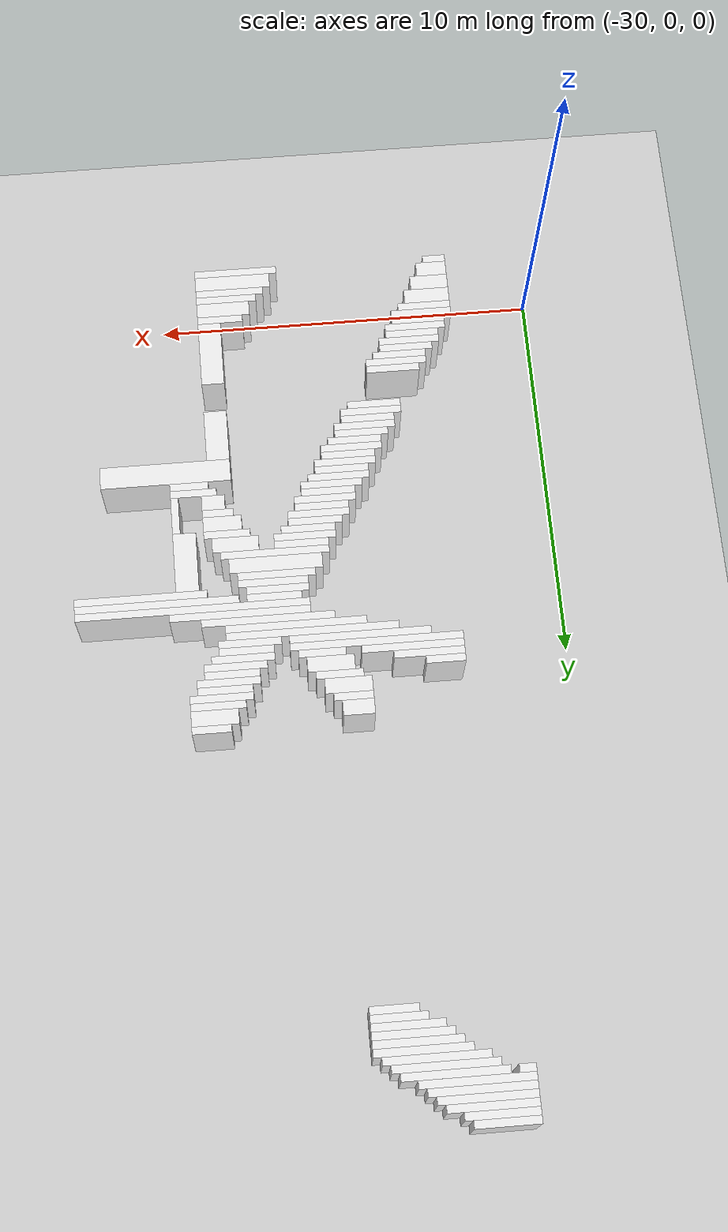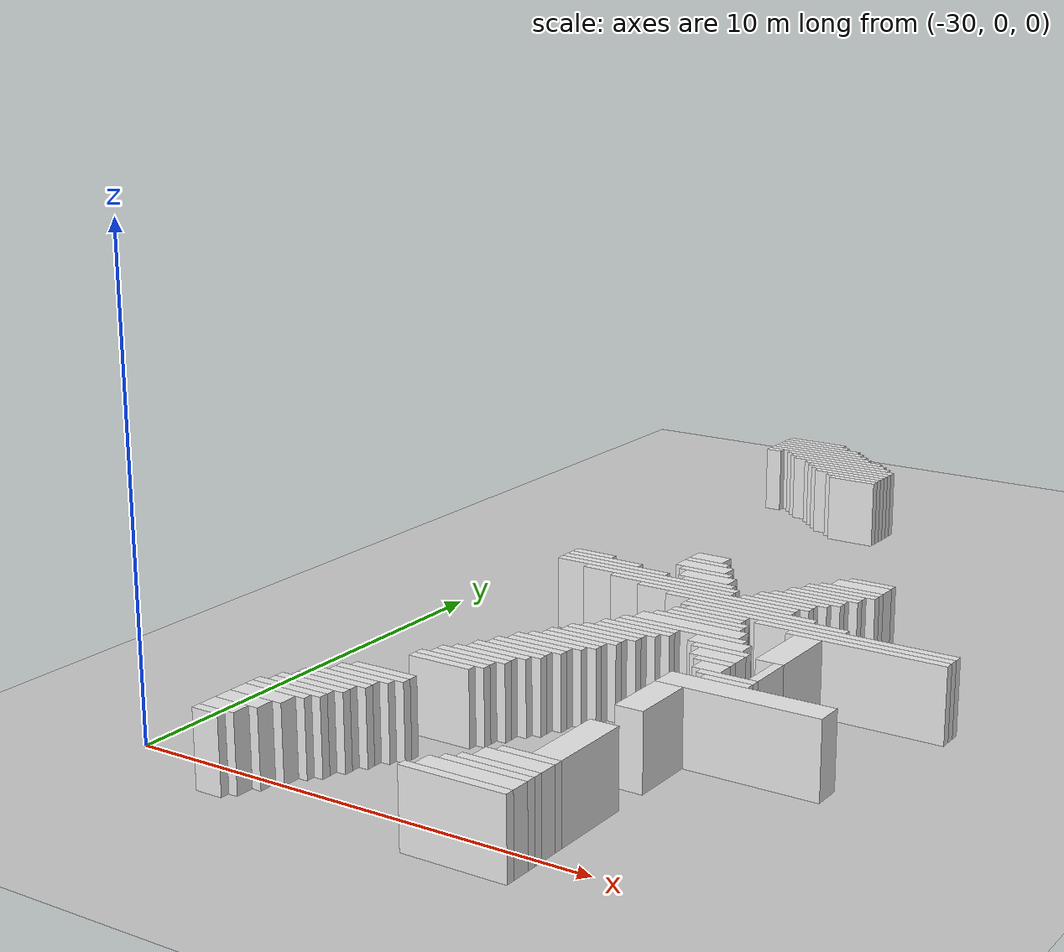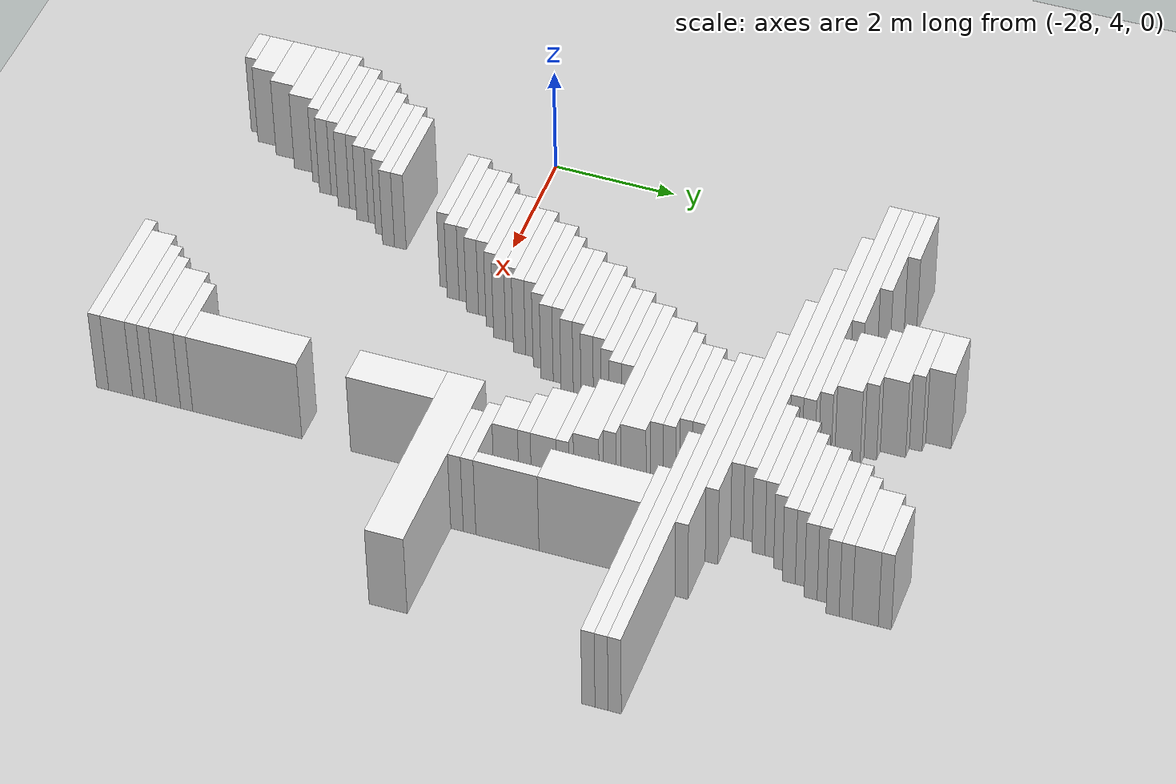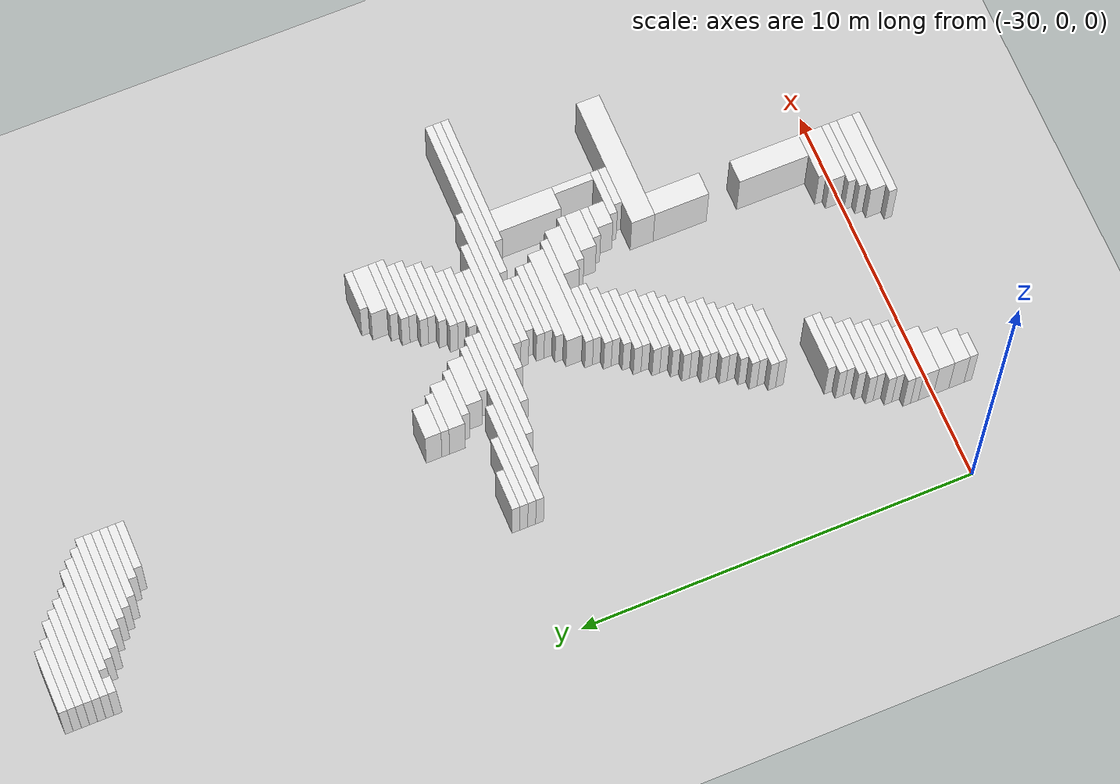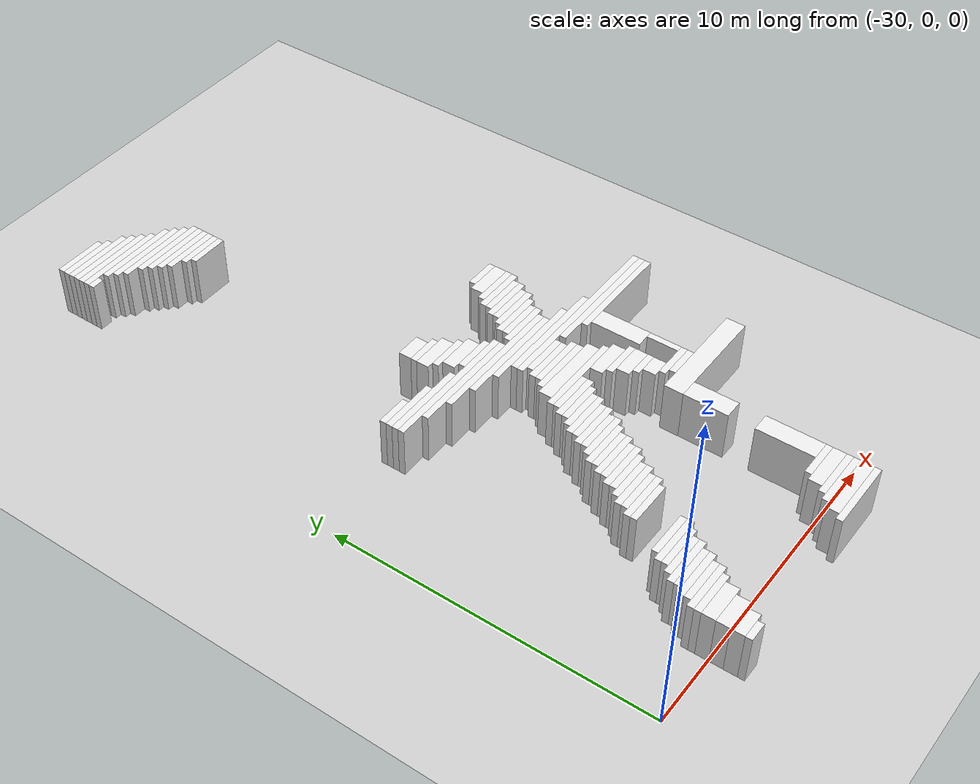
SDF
<sdf version="1.7">
 <world name="default">
  <model name="ground_plane">
   <static>1</static>
   <link name="link">
    <collision name="collision">
     <geometry><plane><normal>0 0 1</normal><size>120 120</size></plane></geometry>
    </collision>
    <visual name="visual">
     <geometry><plane><normal>0 0 1</normal><size>120 120</size></plane></geometry>
     <material>
      <script><uri>file://media/materials/scripts/gazebo.material</uri><name>Gazebo/Grey</name></script>
     </material>
    </visual>
   </link>
  </model>
  <model name="random_complex_03_model">
   <static>1</static>
   <link name="obs_855">
    <pose>-27.0000 21.9000 0.8000 0 0 0</pose>
    <collision name="obs_855_col"><geometry><box><size>1.6000 0.2000 1.6000</size></box></geometry></collision>
    <visual name="obs_855_vis">
     <geometry><box><size>1.6000 0.2000 1.6000</size></box></geometry>
     <material>
      <script><uri>file://media/materials/scripts/gazebo.material</uri><name>Gazebo/White</name></script>
     </material>
    </visual>
   </link>
   <link name="obs_864">
    <pose>-26.9000 21.7000 0.8000 0 0 0</pose>
    <collision name="obs_864_col"><geometry><box><size>1.8000 0.2000 1.6000</size></box></geometry></collision>
    <visual name="obs_864_vis">
     <geometry><box><size>1.8000 0.2000 1.6000</size></box></geometry>
     <material>
      <script><uri>file://media/materials/scripts/gazebo.material</uri><name>Gazebo/White</name></script>
     </material>
    </visual>
   </link>
   <link name="obs_873">
    <pose>-26.7000 21.5000 0.8000 0 0 0</pose>
    <collision name="obs_873_col"><geometry><box><size>2.2000 0.2000 1.6000</size></box></geometry></collision>
    <visual name="obs_873_vis">
     <geometry><box><size>2.2000 0.2000 1.6000</size></box></geometry>
     <material>
      <script><uri>file://media/materials/scripts/gazebo.material</uri><name>Gazebo/White</name></script>
     </material>
    </visual>
   </link>
   <link name="obs_881">
    <pose>-26.6000 21.3000 0.8000 0 0 0</pose>
    <collision name="obs_881_col"><geometry><box><size>2.4000 0.2000 1.6000</size></box></geometry></collision>
    <visual name="obs_881_vis">
     <geometry><box><size>2.4000 0.2000 1.6000</size></box></geometry>
     <material>
      <script><uri>file://media/materials/scripts/gazebo.material</uri><name>Gazebo/White</name></script>
     </material>
    </visual>
   </link>
   <link name="obs_891">
    <pose>-26.5000 21.1000 0.8000 0 0 0</pose>
    <collision name="obs_891_col"><geometry><box><size>2.6000 0.2000 1.6000</size></box></geometry></collision>
    <visual name="obs_891_vis">
     <geometry><box><size>2.6000 0.2000 1.6000</size></box></geometry>
     <material>
      <script><uri>file://media/materials/scripts/gazebo.material</uri><name>Gazebo/White</name></script>
     </material>
    </visual>
   </link>
   <link name="obs_902">
    <pose>-26.4000 20.9000 0.8000 0 0 0</pose>
    <collision name="obs_902_col"><geometry><box><size>2.8000 0.2000 1.6000</size></box></geometry></collision>
    <visual name="obs_902_vis">
     <geometry><box><size>2.8000 0.2000 1.6000</size></box></geometry>
     <material>
      <script><uri>file://media/materials/scripts/gazebo.material</uri><name>Gazebo/White</name></script>
     </material>
    </visual>
   </link>
   <link name="obs_912">
    <pose>-27.6000 20.7000 0.8000 0 0 0</pose>
    <collision name="obs_912_col"><geometry><box><size>0.4000 0.2000 1.6000</size></box></geometry></collision>
    <visual name="obs_912_vis">
     <geometry><box><size>0.4000 0.2000 1.6000</size></box></geometry>
     <material>
      <script><uri>file://media/materials/scripts/gazebo.material</uri><name>Gazebo/White</name></script>
     </material>
    </visual>
   </link>
   <link name="obs_913">
    <pose>-25.9000 20.7000 0.8000 0 0 0</pose>
    <collision name="obs_913_col"><geometry><box><size>2.6000 0.2000 1.6000</size></box></geometry></collision>
    <visual name="obs_913_vis">
     <geometry><box><size>2.6000 0.2000 1.6000</size></box></geometry>
     <material>
      <script><uri>file://media/materials/scripts/gazebo.material</uri><name>Gazebo/White</name></script>
     </material>
    </visual>
   </link>
   <link name="obs_924">
    <pose>-25.7000 20.5000 0.8000 0 0 0</pose>
    <collision name="obs_924_col"><geometry><box><size>2.6000 0.2000 1.6000</size></box></geometry></collision>
    <visual name="obs_924_vis">
     <geometry><box><size>2.6000 0.2000 1.6000</size></box></geometry>
     <material>
      <script><uri>file://media/materials/scripts/gazebo.material</uri><name>Gazebo/White</name></script>
     </material>
    </visual>
   </link>
   <link name="obs_935">
    <pose>-25.5000 20.3000 0.8000 0 0 0</pose>
    <collision name="obs_935_col"><geometry><box><size>2.6000 0.2000 1.6000</size></box></geometry></collision>
    <visual name="obs_935_vis">
     <geometry><box><size>2.6000 0.2000 1.6000</size></box></geometry>
     <material>
      <script><uri>file://media/materials/scripts/gazebo.material</uri><name>Gazebo/White</name></script>
     </material>
    </visual>
   </link>
   <link name="obs_946">
    <pose>-25.2000 20.1000 0.8000 0 0 0</pose>
    <collision name="obs_946_col"><geometry><box><size>2.4000 0.2000 1.6000</size></box></geometry></collision>
    <visual name="obs_946_vis">
     <geometry><box><size>2.4000 0.2000 1.6000</size></box></geometry>
     <material>
      <script><uri>file://media/materials/scripts/gazebo.material</uri><name>Gazebo/White</name></script>
     </material>
    </visual>
   </link>
   <link name="obs_956">
    <pose>-25.1000 19.9000 0.8000 0 0 0</pose>
    <collision name="obs_956_col"><geometry><box><size>2.2000 0.2000 1.6000</size></box></geometry></collision>
    <visual name="obs_956_vis">
     <geometry><box><size>2.2000 0.2000 1.6000</size></box></geometry>
     <material>
      <script><uri>file://media/materials/scripts/gazebo.material</uri><name>Gazebo/White</name></script>
     </material>
    </visual>
   </link>
   <link name="obs_967">
    <pose>-25.0000 19.7000 0.8000 0 0 0</pose>
    <collision name="obs_967_col"><geometry><box><size>2.0000 0.2000 1.6000</size></box></geometry></collision>
    <visual name="obs_967_vis">
     <geometry><box><size>2.0000 0.2000 1.6000</size></box></geometry>
     <material>
      <script><uri>file://media/materials/scripts/gazebo.material</uri><name>Gazebo/White</name></script>
     </material>
    </visual>
   </link>
   <link name="obs_980">
    <pose>-24.9000 19.5000 0.8000 0 0 0</pose>
    <collision name="obs_980_col"><geometry><box><size>1.8000 0.2000 1.6000</size></box></geometry></collision>
    <visual name="obs_980_vis">
     <geometry><box><size>1.8000 0.2000 1.6000</size></box></geometry>
     <material>
      <script><uri>file://media/materials/scripts/gazebo.material</uri><name>Gazebo/White</name></script>
     </material>
    </visual>
   </link>
   <link name="obs_990">
    <pose>-24.7000 19.3000 0.8000 0 0 0</pose>
    <collision name="obs_990_col"><geometry><box><size>1.4000 0.2000 1.6000</size></box></geometry></collision>
    <visual name="obs_990_vis">
     <geometry><box><size>1.4000 0.2000 1.6000</size></box></geometry>
     <material>
      <script><uri>file://media/materials/scripts/gazebo.material</uri><name>Gazebo/White</name></script>
     </material>
    </visual>
   </link>
   <link name="obs_1001">
    <pose>-24.6000 19.1000 0.8000 0 0 0</pose>
    <collision name="obs_1001_col"><geometry><box><size>1.2000 0.2000 1.6000</size></box></geometry></collision>
    <visual name="obs_1001_vis">
     <geometry><box><size>1.2000 0.2000 1.6000</size></box></geometry>
     <material>
      <script><uri>file://media/materials/scripts/gazebo.material</uri><name>Gazebo/White</name></script>
     </material>
    </visual>
   </link>
   <link name="obs_1231">
    <pose>-20.7000 11.9000 0.8000 0 0 0</pose>
    <collision name="obs_1231_col"><geometry><box><size>1.0000 0.2000 1.6000</size></box></geometry></collision>
    <visual name="obs_1231_vis">
     <geometry><box><size>1.0000 0.2000 1.6000</size></box></geometry>
     <material>
      <script><uri>file://media/materials/scripts/gazebo.material</uri><name>Gazebo/White</name></script>
     </material>
    </visual>
   </link>
   <link name="obs_1238">
    <pose>-24.4000 11.6000 0.8000 0 0 0</pose>
    <collision name="obs_1238_col"><geometry><box><size>0.8000 0.4000 1.6000</size></box></geometry></collision>
    <visual name="obs_1238_vis">
     <geometry><box><size>0.8000 0.4000 1.6000</size></box></geometry>
     <material>
      <script><uri>file://media/materials/scripts/gazebo.material</uri><name>Gazebo/White</name></script>
     </material>
    </visual>
   </link>
   <link name="obs_1239">
    <pose>-20.8000 11.6000 0.8000 0 0 0</pose>
    <collision name="obs_1239_col"><geometry><box><size>1.2000 0.4000 1.6000</size></box></geometry></collision>
    <visual name="obs_1239_vis">
     <geometry><box><size>1.2000 0.4000 1.6000</size></box></geometry>
     <material>
      <script><uri>file://media/materials/scripts/gazebo.material</uri><name>Gazebo/White</name></script>
     </material>
    </visual>
   </link>
   <link name="obs_1245">
    <pose>-24.3000 11.3000 0.8000 0 0 0</pose>
    <collision name="obs_1245_col"><geometry><box><size>1.0000 0.2000 1.6000</size></box></geometry></collision>
    <visual name="obs_1245_vis">
     <geometry><box><size>1.0000 0.2000 1.6000</size></box></geometry>
     <material>
      <script><uri>file://media/materials/scripts/gazebo.material</uri><name>Gazebo/White</name></script>
     </material>
    </visual>
   </link>
   <link name="obs_1246">
    <pose>-20.9000 11.3000 0.8000 0 0 0</pose>
    <collision name="obs_1246_col"><geometry><box><size>1.4000 0.2000 1.6000</size></box></geometry></collision>
    <visual name="obs_1246_vis">
     <geometry><box><size>1.4000 0.2000 1.6000</size></box></geometry>
     <material>
      <script><uri>file://media/materials/scripts/gazebo.material</uri><name>Gazebo/White</name></script>
     </material>
    </visual>
   </link>
   <link name="obs_1250">
    <pose>-21.0000 11.1000 0.8000 0 0 0</pose>
    <collision name="obs_1250_col"><geometry><box><size>1.6000 0.2000 1.6000</size></box></geometry></collision>
    <visual name="obs_1250_vis">
     <geometry><box><size>1.6000 0.2000 1.6000</size></box></geometry>
     <material>
      <script><uri>file://media/materials/scripts/gazebo.material</uri><name>Gazebo/White</name></script>
     </material>
    </visual>
   </link>
   <link name="obs_1259">
    <pose>-24.2000 11.0000 0.8000 0 0 0</pose>
    <collision name="obs_1259_col"><geometry><box><size>1.2000 0.4000 1.6000</size></box></geometry></collision>
    <visual name="obs_1259_vis">
     <geometry><box><size>1.2000 0.4000 1.6000</size></box></geometry>
     <material>
      <script><uri>file://media/materials/scripts/gazebo.material</uri><name>Gazebo/White</name></script>
     </material>
    </visual>
   </link>
   <link name="obs_1261">
    <pose>-21.1000 10.9000 0.8000 0 0 0</pose>
    <collision name="obs_1261_col"><geometry><box><size>1.4000 0.2000 1.6000</size></box></geometry></collision>
    <visual name="obs_1261_vis">
     <geometry><box><size>1.4000 0.2000 1.6000</size></box></geometry>
     <material>
      <script><uri>file://media/materials/scripts/gazebo.material</uri><name>Gazebo/White</name></script>
     </material>
    </visual>
   </link>
   <link name="obs_1268">
    <pose>-24.0000 10.7000 0.8000 0 0 0</pose>
    <collision name="obs_1268_col"><geometry><box><size>1.2000 0.2000 1.6000</size></box></geometry></collision>
    <visual name="obs_1268_vis">
     <geometry><box><size>1.2000 0.2000 1.6000</size></box></geometry>
     <material>
      <script><uri>file://media/materials/scripts/gazebo.material</uri><name>Gazebo/White</name></script>
     </material>
    </visual>
   </link>
   <link name="obs_1269">
    <pose>-21.2000 10.7000 0.8000 0 0 0</pose>
    <collision name="obs_1269_col"><geometry><box><size>1.6000 0.2000 1.6000</size></box></geometry></collision>
    <visual name="obs_1269_vis">
     <geometry><box><size>1.6000 0.2000 1.6000</size></box></geometry>
     <material>
      <script><uri>file://media/materials/scripts/gazebo.material</uri><name>Gazebo/White</name></script>
     </material>
    </visual>
   </link>
   <link name="obs_1277">
    <pose>-26.7000 10.5000 0.8000 0 0 0</pose>
    <collision name="obs_1277_col"><geometry><box><size>1.0000 0.2000 1.6000</size></box></geometry></collision>
    <visual name="obs_1277_vis">
     <geometry><box><size>1.0000 0.2000 1.6000</size></box></geometry>
     <material>
      <script><uri>file://media/materials/scripts/gazebo.material</uri><name>Gazebo/White</name></script>
     </material>
    </visual>
   </link>
   <link name="obs_1278">
    <pose>-21.3000 10.5000 0.8000 0 0 0</pose>
    <collision name="obs_1278_col"><geometry><box><size>1.4000 0.2000 1.6000</size></box></geometry></collision>
    <visual name="obs_1278_vis">
     <geometry><box><size>1.4000 0.2000 1.6000</size></box></geometry>
     <material>
      <script><uri>file://media/materials/scripts/gazebo.material</uri><name>Gazebo/White</name></script>
     </material>
    </visual>
   </link>
   <link name="obs_1286">
    <pose>-23.8000 10.4000 0.8000 0 0 0</pose>
    <collision name="obs_1286_col"><geometry><box><size>1.2000 0.4000 1.6000</size></box></geometry></collision>
    <visual name="obs_1286_vis">
     <geometry><box><size>1.2000 0.4000 1.6000</size></box></geometry>
     <material>
      <script><uri>file://media/materials/scripts/gazebo.material</uri><name>Gazebo/White</name></script>
     </material>
    </visual>
   </link>
   <link name="obs_1288">
    <pose>-26.3000 10.3000 0.8000 0 0 0</pose>
    <collision name="obs_1288_col"><geometry><box><size>1.8000 0.2000 1.6000</size></box></geometry></collision>
    <visual name="obs_1288_vis">
     <geometry><box><size>1.8000 0.2000 1.6000</size></box></geometry>
     <material>
      <script><uri>file://media/materials/scripts/gazebo.material</uri><name>Gazebo/White</name></script>
     </material>
    </visual>
   </link>
   <link name="obs_1289">
    <pose>-21.4000 10.3000 0.8000 0 0 0</pose>
    <collision name="obs_1289_col"><geometry><box><size>1.6000 0.2000 1.6000</size></box></geometry></collision>
    <visual name="obs_1289_vis">
     <geometry><box><size>1.6000 0.2000 1.6000</size></box></geometry>
     <material>
      <script><uri>file://media/materials/scripts/gazebo.material</uri><name>Gazebo/White</name></script>
     </material>
    </visual>
   </link>
   <link name="obs_1297">
    <pose>-25.9000 10.1000 0.8000 0 0 0</pose>
    <collision name="obs_1297_col"><geometry><box><size>2.6000 0.2000 1.6000</size></box></geometry></collision>
    <visual name="obs_1297_vis">
     <geometry><box><size>2.6000 0.2000 1.6000</size></box></geometry>
     <material>
      <script><uri>file://media/materials/scripts/gazebo.material</uri><name>Gazebo/White</name></script>
     </material>
    </visual>
   </link>
   <link name="obs_1298">
    <pose>-23.6000 10.1000 0.8000 0 0 0</pose>
    <collision name="obs_1298_col"><geometry><box><size>1.2000 0.2000 1.6000</size></box></geometry></collision>
    <visual name="obs_1298_vis">
     <geometry><box><size>1.2000 0.2000 1.6000</size></box></geometry>
     <material>
      <script><uri>file://media/materials/scripts/gazebo.material</uri><name>Gazebo/White</name></script>
     </material>
    </visual>
   </link>
   <link name="obs_1299">
    <pose>-21.6000 10.1000 0.8000 0 0 0</pose>
    <collision name="obs_1299_col"><geometry><box><size>1.6000 0.2000 1.6000</size></box></geometry></collision>
    <visual name="obs_1299_vis">
     <geometry><box><size>1.6000 0.2000 1.6000</size></box></geometry>
     <material>
      <script><uri>file://media/materials/scripts/gazebo.material</uri><name>Gazebo/White</name></script>
     </material>
    </visual>
   </link>
   <link name="obs_1307">
    <pose>-25.0000 9.9000 0.8000 0 0 0</pose>
    <collision name="obs_1307_col"><geometry><box><size>4.4000 0.2000 1.6000</size></box></geometry></collision>
    <visual name="obs_1307_vis">
     <geometry><box><size>4.4000 0.2000 1.6000</size></box></geometry>
     <material>
      <script><uri>file://media/materials/scripts/gazebo.material</uri><name>Gazebo/White</name></script>
     </material>
    </visual>
   </link>
   <link name="obs_1308">
    <pose>-21.7000 9.9000 0.8000 0 0 0</pose>
    <collision name="obs_1308_col"><geometry><box><size>1.4000 0.2000 1.6000</size></box></geometry></collision>
    <visual name="obs_1308_vis">
     <geometry><box><size>1.4000 0.2000 1.6000</size></box></geometry>
     <material>
      <script><uri>file://media/materials/scripts/gazebo.material</uri><name>Gazebo/White</name></script>
     </material>
    </visual>
   </link>
   <link name="obs_1318">
    <pose>-24.6000 9.7000 0.8000 0 0 0</pose>
    <collision name="obs_1318_col"><geometry><box><size>3.6000 0.2000 1.6000</size></box></geometry></collision>
    <visual name="obs_1318_vis">
     <geometry><box><size>3.6000 0.2000 1.6000</size></box></geometry>
     <material>
      <script><uri>file://media/materials/scripts/gazebo.material</uri><name>Gazebo/White</name></script>
     </material>
    </visual>
   </link>
   <link name="obs_1319">
    <pose>-21.8000 9.7000 0.8000 0 0 0</pose>
    <collision name="obs_1319_col"><geometry><box><size>1.6000 0.2000 1.6000</size></box></geometry></collision>
    <visual name="obs_1319_vis">
     <geometry><box><size>1.6000 0.2000 1.6000</size></box></geometry>
     <material>
      <script><uri>file://media/materials/scripts/gazebo.material</uri><name>Gazebo/White</name></script>
     </material>
    </visual>
   </link>
   <link name="obs_1327">
    <pose>-23.4000 9.5000 0.8000 0 0 0</pose>
    <collision name="obs_1327_col"><geometry><box><size>4.4000 0.2000 1.6000</size></box></geometry></collision>
    <visual name="obs_1327_vis">
     <geometry><box><size>4.4000 0.2000 1.6000</size></box></geometry>
     <material>
      <script><uri>file://media/materials/scripts/gazebo.material</uri><name>Gazebo/White</name></script>
     </material>
    </visual>
   </link>
   <link name="obs_1336">
    <pose>-23.0000 9.3000 0.8000 0 0 0</pose>
    <collision name="obs_1336_col"><geometry><box><size>3.6000 0.2000 1.6000</size></box></geometry></collision>
    <visual name="obs_1336_vis">
     <geometry><box><size>3.6000 0.2000 1.6000</size></box></geometry>
     <material>
      <script><uri>file://media/materials/scripts/gazebo.material</uri><name>Gazebo/White</name></script>
     </material>
    </visual>
   </link>
   <link name="obs_1345">
    <pose>-22.3000 9.1000 0.8000 0 0 0</pose>
    <collision name="obs_1345_col"><geometry><box><size>3.4000 0.2000 1.6000</size></box></geometry></collision>
    <visual name="obs_1345_vis">
     <geometry><box><size>3.4000 0.2000 1.6000</size></box></geometry>
     <material>
      <script><uri>file://media/materials/scripts/gazebo.material</uri><name>Gazebo/White</name></script>
     </material>
    </visual>
   </link>
   <link name="obs_1354">
    <pose>-21.6000 8.9000 0.8000 0 0 0</pose>
    <collision name="obs_1354_col"><geometry><box><size>3.6000 0.2000 1.6000</size></box></geometry></collision>
    <visual name="obs_1354_vis">
     <geometry><box><size>3.6000 0.2000 1.6000</size></box></geometry>
     <material>
      <script><uri>file://media/materials/scripts/gazebo.material</uri><name>Gazebo/White</name></script>
     </material>
    </visual>
   </link>
   <link name="obs_1360">
    <pose>-20.4000 8.7000 0.8000 0 0 0</pose>
    <collision name="obs_1360_col"><geometry><box><size>6.0000 0.2000 1.6000</size></box></geometry></collision>
    <visual name="obs_1360_vis">
     <geometry><box><size>6.0000 0.2000 1.6000</size></box></geometry>
     <material>
      <script><uri>file://media/materials/scripts/gazebo.material</uri><name>Gazebo/White</name></script>
     </material>
    </visual>
   </link>
   <link name="obs_1367">
    <pose>-22.5000 8.5000 0.8000 0 0 0</pose>
    <collision name="obs_1367_col"><geometry><box><size>1.4000 0.2000 1.6000</size></box></geometry></collision>
    <visual name="obs_1367_vis">
     <geometry><box><size>1.4000 0.2000 1.6000</size></box></geometry>
     <material>
      <script><uri>file://media/materials/scripts/gazebo.material</uri><name>Gazebo/White</name></script>
     </material>
    </visual>
   </link>
   <link name="obs_1368">
    <pose>-19.5000 8.5000 0.8000 0 0 0</pose>
    <collision name="obs_1368_col"><geometry><box><size>4.2000 0.2000 1.6000</size></box></geometry></collision>
    <visual name="obs_1368_vis">
     <geometry><box><size>4.2000 0.2000 1.6000</size></box></geometry>
     <material>
      <script><uri>file://media/materials/scripts/gazebo.material</uri><name>Gazebo/White</name></script>
     </material>
    </visual>
   </link>
   <link name="obs_1375">
    <pose>-22.6000 8.3000 0.8000 0 0 0</pose>
    <collision name="obs_1375_col"><geometry><box><size>1.6000 0.2000 1.6000</size></box></geometry></collision>
    <visual name="obs_1375_vis">
     <geometry><box><size>1.6000 0.2000 1.6000</size></box></geometry>
     <material>
      <script><uri>file://media/materials/scripts/gazebo.material</uri><name>Gazebo/White</name></script>
     </material>
    </visual>
   </link>
   <link name="obs_1376">
    <pose>-19.1000 8.3000 0.8000 0 0 0</pose>
    <collision name="obs_1376_col"><geometry><box><size>3.4000 0.2000 1.6000</size></box></geometry></collision>
    <visual name="obs_1376_vis">
     <geometry><box><size>3.4000 0.2000 1.6000</size></box></geometry>
     <material>
      <script><uri>file://media/materials/scripts/gazebo.material</uri><name>Gazebo/White</name></script>
     </material>
    </visual>
   </link>
   <link name="obs_1382">
    <pose>-22.5000 8.1000 0.8000 0 0 0</pose>
    <collision name="obs_1382_col"><geometry><box><size>1.8000 0.2000 1.6000</size></box></geometry></collision>
    <visual name="obs_1382_vis">
     <geometry><box><size>1.8000 0.2000 1.6000</size></box></geometry>
     <material>
      <script><uri>file://media/materials/scripts/gazebo.material</uri><name>Gazebo/White</name></script>
     </material>
    </visual>
   </link>
   <link name="obs_1390">
    <pose>-22.6000 7.9000 0.8000 0 0 0</pose>
    <collision name="obs_1390_col"><geometry><box><size>2.0000 0.2000 1.6000</size></box></geometry></collision>
    <visual name="obs_1390_vis">
     <geometry><box><size>2.0000 0.2000 1.6000</size></box></geometry>
     <material>
      <script><uri>file://media/materials/scripts/gazebo.material</uri><name>Gazebo/White</name></script>
     </material>
    </visual>
   </link>
   <link name="obs_1400">
    <pose>-22.6000 7.6000 0.8000 0 0 0</pose>
    <collision name="obs_1400_col"><geometry><box><size>2.4000 0.4000 1.6000</size></box></geometry></collision>
    <visual name="obs_1400_vis">
     <geometry><box><size>2.4000 0.4000 1.6000</size></box></geometry>
     <material>
      <script><uri>file://media/materials/scripts/gazebo.material</uri><name>Gazebo/White</name></script>
     </material>
    </visual>
   </link>
   <link name="obs_1410">
    <pose>-22.6000 7.3000 0.8000 0 0 0</pose>
    <collision name="obs_1410_col"><geometry><box><size>2.8000 0.2000 1.6000</size></box></geometry></collision>
    <visual name="obs_1410_vis">
     <geometry><box><size>2.8000 0.2000 1.6000</size></box></geometry>
     <material>
      <script><uri>file://media/materials/scripts/gazebo.material</uri><name>Gazebo/White</name></script>
     </material>
    </visual>
   </link>
   <link name="obs_1416">
    <pose>-23.3000 7.1000 0.8000 0 0 0</pose>
    <collision name="obs_1416_col"><geometry><box><size>1.4000 0.2000 1.6000</size></box></geometry></collision>
    <visual name="obs_1416_vis">
     <geometry><box><size>1.4000 0.2000 1.6000</size></box></geometry>
     <material>
      <script><uri>file://media/materials/scripts/gazebo.material</uri><name>Gazebo/White</name></script>
     </material>
    </visual>
   </link>
   <link name="obs_1421">
    <pose>-21.6000 7.0000 0.8000 0 0 0</pose>
    <collision name="obs_1421_col"><geometry><box><size>1.2000 0.4000 1.6000</size></box></geometry></collision>
    <visual name="obs_1421_vis">
     <geometry><box><size>1.2000 0.4000 1.6000</size></box></geometry>
     <material>
      <script><uri>file://media/materials/scripts/gazebo.material</uri><name>Gazebo/White</name></script>
     </material>
    </visual>
   </link>
   <link name="obs_1423">
    <pose>-23.4000 6.9000 0.8000 0 0 0</pose>
    <collision name="obs_1423_col"><geometry><box><size>1.6000 0.2000 1.6000</size></box></geometry></collision>
    <visual name="obs_1423_vis">
     <geometry><box><size>1.6000 0.2000 1.6000</size></box></geometry>
     <material>
      <script><uri>file://media/materials/scripts/gazebo.material</uri><name>Gazebo/White</name></script>
     </material>
    </visual>
   </link>
   <link name="obs_1427">
    <pose>-20.3000 7.4000 0.8000 0 0 0</pose>
    <collision name="obs_1427_col"><geometry><box><size>0.6000 1.6000 1.6000</size></box></geometry></collision>
    <visual name="obs_1427_vis">
     <geometry><box><size>0.6000 1.6000 1.6000</size></box></geometry>
     <material>
      <script><uri>file://media/materials/scripts/gazebo.material</uri><name>Gazebo/White</name></script>
     </material>
    </visual>
   </link>
   <link name="obs_1431">
    <pose>-23.5000 6.7000 0.8000 0 0 0</pose>
    <collision name="obs_1431_col"><geometry><box><size>1.4000 0.2000 1.6000</size></box></geometry></collision>
    <visual name="obs_1431_vis">
     <geometry><box><size>1.4000 0.2000 1.6000</size></box></geometry>
     <material>
      <script><uri>file://media/materials/scripts/gazebo.material</uri><name>Gazebo/White</name></script>
     </material>
    </visual>
   </link>
   <link name="obs_1432">
    <pose>-21.4000 6.7000 0.8000 0 0 0</pose>
    <collision name="obs_1432_col"><geometry><box><size>1.2000 0.2000 1.6000</size></box></geometry></collision>
    <visual name="obs_1432_vis">
     <geometry><box><size>1.2000 0.2000 1.6000</size></box></geometry>
     <material>
      <script><uri>file://media/materials/scripts/gazebo.material</uri><name>Gazebo/White</name></script>
     </material>
    </visual>
   </link>
   <link name="obs_1436">
    <pose>-23.7000 6.5000 0.8000 0 0 0</pose>
    <collision name="obs_1436_col"><geometry><box><size>1.4000 0.2000 1.6000</size></box></geometry></collision>
    <visual name="obs_1436_vis">
     <geometry><box><size>1.4000 0.2000 1.6000</size></box></geometry>
     <material>
      <script><uri>file://media/materials/scripts/gazebo.material</uri><name>Gazebo/White</name></script>
     </material>
    </visual>
   </link>
   <link name="obs_1443">
    <pose>-21.3000 6.4000 0.8000 0 0 0</pose>
    <collision name="obs_1443_col"><geometry><box><size>1.0000 0.4000 1.6000</size></box></geometry></collision>
    <visual name="obs_1443_vis">
     <geometry><box><size>1.0000 0.4000 1.6000</size></box></geometry>
     <material>
      <script><uri>file://media/materials/scripts/gazebo.material</uri><name>Gazebo/White</name></script>
     </material>
    </visual>
   </link>
   <link name="obs_1445">
    <pose>-23.8000 6.3000 0.8000 0 0 0</pose>
    <collision name="obs_1445_col"><geometry><box><size>1.6000 0.2000 1.6000</size></box></geometry></collision>
    <visual name="obs_1445_vis">
     <geometry><box><size>1.6000 0.2000 1.6000</size></box></geometry>
     <material>
      <script><uri>file://media/materials/scripts/gazebo.material</uri><name>Gazebo/White</name></script>
     </material>
    </visual>
   </link>
   <link name="obs_1450">
    <pose>-23.9000 6.1000 0.8000 0 0 0</pose>
    <collision name="obs_1450_col"><geometry><box><size>1.4000 0.2000 1.6000</size></box></geometry></collision>
    <visual name="obs_1450_vis">
     <geometry><box><size>1.4000 0.2000 1.6000</size></box></geometry>
     <material>
      <script><uri>file://media/materials/scripts/gazebo.material</uri><name>Gazebo/White</name></script>
     </material>
    </visual>
   </link>
   <link name="obs_1451">
    <pose>-21.2000 6.1000 0.8000 0 0 0</pose>
    <collision name="obs_1451_col"><geometry><box><size>0.8000 0.2000 1.6000</size></box></geometry></collision>
    <visual name="obs_1451_vis">
     <geometry><box><size>0.8000 0.2000 1.6000</size></box></geometry>
     <material>
      <script><uri>file://media/materials/scripts/gazebo.material</uri><name>Gazebo/White</name></script>
     </material>
    </visual>
   </link>
   <link name="obs_1457">
    <pose>-24.0000 5.9000 0.8000 0 0 0</pose>
    <collision name="obs_1457_col"><geometry><box><size>1.6000 0.2000 1.6000</size></box></geometry></collision>
    <visual name="obs_1457_vis">
     <geometry><box><size>1.6000 0.2000 1.6000</size></box></geometry>
     <material>
      <script><uri>file://media/materials/scripts/gazebo.material</uri><name>Gazebo/White</name></script>
     </material>
    </visual>
   </link>
   <link name="obs_1459">
    <pose>-20.1000 6.1000 0.8000 0 0 0</pose>
    <collision name="obs_1459_col"><geometry><box><size>0.2000 1.0000 1.6000</size></box></geometry></collision>
    <visual name="obs_1459_vis">
     <geometry><box><size>0.2000 1.0000 1.6000</size></box></geometry>
     <material>
      <script><uri>file://media/materials/scripts/gazebo.material</uri><name>Gazebo/White</name></script>
     </material>
    </visual>
   </link>
   <link name="obs_1460">
    <pose>-21.1000 5.8000 0.8000 0 0 0</pose>
    <collision name="obs_1460_col"><geometry><box><size>0.6000 0.4000 1.6000</size></box></geometry></collision>
    <visual name="obs_1460_vis">
     <geometry><box><size>0.6000 0.4000 1.6000</size></box></geometry>
     <material>
      <script><uri>file://media/materials/scripts/gazebo.material</uri><name>Gazebo/White</name></script>
     </material>
    </visual>
   </link>
   <link name="obs_1463">
    <pose>-24.1000 5.7000 0.8000 0 0 0</pose>
    <collision name="obs_1463_col"><geometry><box><size>1.4000 0.2000 1.6000</size></box></geometry></collision>
    <visual name="obs_1463_vis">
     <geometry><box><size>1.4000 0.2000 1.6000</size></box></geometry>
     <material>
      <script><uri>file://media/materials/scripts/gazebo.material</uri><name>Gazebo/White</name></script>
     </material>
    </visual>
   </link>
   <link name="obs_1472">
    <pose>-24.2000 5.5000 0.8000 0 0 0</pose>
    <collision name="obs_1472_col"><geometry><box><size>1.6000 0.2000 1.6000</size></box></geometry></collision>
    <visual name="obs_1472_vis">
     <geometry><box><size>1.6000 0.2000 1.6000</size></box></geometry>
     <material>
      <script><uri>file://media/materials/scripts/gazebo.material</uri><name>Gazebo/White</name></script>
     </material>
    </visual>
   </link>
   <link name="obs_1473">
    <pose>-20.6000 5.5000 0.8000 0 0 0</pose>
    <collision name="obs_1473_col"><geometry><box><size>1.2000 0.2000 1.6000</size></box></geometry></collision>
    <visual name="obs_1473_vis">
     <geometry><box><size>1.2000 0.2000 1.6000</size></box></geometry>
     <material>
      <script><uri>file://media/materials/scripts/gazebo.material</uri><name>Gazebo/White</name></script>
     </material>
    </visual>
   </link>
   <link name="obs_1482">
    <pose>-24.4000 5.3000 0.8000 0 0 0</pose>
    <collision name="obs_1482_col"><geometry><box><size>1.6000 0.2000 1.6000</size></box></geometry></collision>
    <visual name="obs_1482_vis">
     <geometry><box><size>1.6000 0.2000 1.6000</size></box></geometry>
     <material>
      <script><uri>file://media/materials/scripts/gazebo.material</uri><name>Gazebo/White</name></script>
     </material>
    </visual>
   </link>
   <link name="obs_1483">
    <pose>-20.5000 5.3000 0.8000 0 0 0</pose>
    <collision name="obs_1483_col"><geometry><box><size>1.0000 0.2000 1.6000</size></box></geometry></collision>
    <visual name="obs_1483_vis">
     <geometry><box><size>1.0000 0.2000 1.6000</size></box></geometry>
     <material>
      <script><uri>file://media/materials/scripts/gazebo.material</uri><name>Gazebo/White</name></script>
     </material>
    </visual>
   </link>
   <link name="obs_1488">
    <pose>-24.5000 5.1000 0.8000 0 0 0</pose>
    <collision name="obs_1488_col"><geometry><box><size>1.4000 0.2000 1.6000</size></box></geometry></collision>
    <visual name="obs_1488_vis">
     <geometry><box><size>1.4000 0.2000 1.6000</size></box></geometry>
     <material>
      <script><uri>file://media/materials/scripts/gazebo.material</uri><name>Gazebo/White</name></script>
     </material>
    </visual>
   </link>
   <link name="obs_1497">
    <pose>-24.6000 4.9000 0.8000 0 0 0</pose>
    <collision name="obs_1497_col"><geometry><box><size>1.6000 0.2000 1.6000</size></box></geometry></collision>
    <visual name="obs_1497_vis">
     <geometry><box><size>1.6000 0.2000 1.6000</size></box></geometry>
     <material>
      <script><uri>file://media/materials/scripts/gazebo.material</uri><name>Gazebo/White</name></script>
     </material>
    </visual>
   </link>
   <link name="obs_1502">
    <pose>-19.9000 4.9000 0.8000 0 0 0</pose>
    <collision name="obs_1502_col"><geometry><box><size>3.4000 0.6000 1.6000</size></box></geometry></collision>
    <visual name="obs_1502_vis">
     <geometry><box><size>3.4000 0.6000 1.6000</size></box></geometry>
     <material>
      <script><uri>file://media/materials/scripts/gazebo.material</uri><name>Gazebo/White</name></script>
     </material>
    </visual>
   </link>
   <link name="obs_1505">
    <pose>-24.7000 4.7000 0.8000 0 0 0</pose>
    <collision name="obs_1505_col"><geometry><box><size>1.4000 0.2000 1.6000</size></box></geometry></collision>
    <visual name="obs_1505_vis">
     <geometry><box><size>1.4000 0.2000 1.6000</size></box></geometry>
     <material>
      <script><uri>file://media/materials/scripts/gazebo.material</uri><name>Gazebo/White</name></script>
     </material>
    </visual>
   </link>
   <link name="obs_1510">
    <pose>-24.8000 4.5000 0.8000 0 0 0</pose>
    <collision name="obs_1510_col"><geometry><box><size>1.6000 0.2000 1.6000</size></box></geometry></collision>
    <visual name="obs_1510_vis">
     <geometry><box><size>1.6000 0.2000 1.6000</size></box></geometry>
     <material>
      <script><uri>file://media/materials/scripts/gazebo.material</uri><name>Gazebo/White</name></script>
     </material>
    </visual>
   </link>
   <link name="obs_1514">
    <pose>-24.9000 4.3000 0.8000 0 0 0</pose>
    <collision name="obs_1514_col"><geometry><box><size>1.4000 0.2000 1.6000</size></box></geometry></collision>
    <visual name="obs_1514_vis">
     <geometry><box><size>1.4000 0.2000 1.6000</size></box></geometry>
     <material>
      <script><uri>file://media/materials/scripts/gazebo.material</uri><name>Gazebo/White</name></script>
     </material>
    </visual>
   </link>
   <link name="obs_1518">
    <pose>-25.1000 4.1000 0.8000 0 0 0</pose>
    <collision name="obs_1518_col"><geometry><box><size>1.4000 0.2000 1.6000</size></box></geometry></collision>
    <visual name="obs_1518_vis">
     <geometry><box><size>1.4000 0.2000 1.6000</size></box></geometry>
     <material>
      <script><uri>file://media/materials/scripts/gazebo.material</uri><name>Gazebo/White</name></script>
     </material>
    </visual>
   </link>
   <link name="obs_1524">
    <pose>-25.2000 3.9000 0.8000 0 0 0</pose>
    <collision name="obs_1524_col"><geometry><box><size>1.6000 0.2000 1.6000</size></box></geometry></collision>
    <visual name="obs_1524_vis">
     <geometry><box><size>1.6000 0.2000 1.6000</size></box></geometry>
     <material>
      <script><uri>file://media/materials/scripts/gazebo.material</uri><name>Gazebo/White</name></script>
     </material>
    </visual>
   </link>
   <link name="obs_1527">
    <pose>-25.3000 3.7000 0.8000 0 0 0</pose>
    <collision name="obs_1527_col"><geometry><box><size>1.4000 0.2000 1.6000</size></box></geometry></collision>
    <visual name="obs_1527_vis">
     <geometry><box><size>1.4000 0.2000 1.6000</size></box></geometry>
     <material>
      <script><uri>file://media/materials/scripts/gazebo.material</uri><name>Gazebo/White</name></script>
     </material>
    </visual>
   </link>
   <link name="obs_1530">
    <pose>-25.4000 3.5000 0.8000 0 0 0</pose>
    <collision name="obs_1530_col"><geometry><box><size>1.6000 0.2000 1.6000</size></box></geometry></collision>
    <visual name="obs_1530_vis">
     <geometry><box><size>1.6000 0.2000 1.6000</size></box></geometry>
     <material>
      <script><uri>file://media/materials/scripts/gazebo.material</uri><name>Gazebo/White</name></script>
     </material>
    </visual>
   </link>
   <link name="obs_1534">
    <pose>-21.3000 3.9000 0.8000 0 0 0</pose>
    <collision name="obs_1534_col"><geometry><box><size>0.6000 1.4000 1.6000</size></box></geometry></collision>
    <visual name="obs_1534_vis">
     <geometry><box><size>0.6000 1.4000 1.6000</size></box></geometry>
     <material>
      <script><uri>file://media/materials/scripts/gazebo.material</uri><name>Gazebo/White</name></script>
     </material>
    </visual>
   </link>
   <link name="obs_1538">
    <pose>-25.5000 3.3000 0.8000 0 0 0</pose>
    <collision name="obs_1538_col"><geometry><box><size>1.4000 0.2000 1.6000</size></box></geometry></collision>
    <visual name="obs_1538_vis">
     <geometry><box><size>1.4000 0.2000 1.6000</size></box></geometry>
     <material>
      <script><uri>file://media/materials/scripts/gazebo.material</uri><name>Gazebo/White</name></script>
     </material>
    </visual>
   </link>
   <link name="obs_1548">
    <pose>-26.1000 2.3000 0.8000 0 0 0</pose>
    <collision name="obs_1548_col"><geometry><box><size>1.4000 0.2000 1.6000</size></box></geometry></collision>
    <visual name="obs_1548_vis">
     <geometry><box><size>1.4000 0.2000 1.6000</size></box></geometry>
     <material>
      <script><uri>file://media/materials/scripts/gazebo.material</uri><name>Gazebo/White</name></script>
     </material>
    </visual>
   </link>
   <link name="obs_1553">
    <pose>-26.2000 2.1000 0.8000 0 0 0</pose>
    <collision name="obs_1553_col"><geometry><box><size>1.6000 0.2000 1.6000</size></box></geometry></collision>
    <visual name="obs_1553_vis">
     <geometry><box><size>1.6000 0.2000 1.6000</size></box></geometry>
     <material>
      <script><uri>file://media/materials/scripts/gazebo.material</uri><name>Gazebo/White</name></script>
     </material>
    </visual>
   </link>
   <link name="obs_1559">
    <pose>-26.3000 1.9000 0.8000 0 0 0</pose>
    <collision name="obs_1559_col"><geometry><box><size>1.4000 0.2000 1.6000</size></box></geometry></collision>
    <visual name="obs_1559_vis">
     <geometry><box><size>1.4000 0.2000 1.6000</size></box></geometry>
     <material>
      <script><uri>file://media/materials/scripts/gazebo.material</uri><name>Gazebo/White</name></script>
     </material>
    </visual>
   </link>
   <link name="obs_1563">
    <pose>-26.5000 1.7000 0.8000 0 0 0</pose>
    <collision name="obs_1563_col"><geometry><box><size>1.4000 0.2000 1.6000</size></box></geometry></collision>
    <visual name="obs_1563_vis">
     <geometry><box><size>1.4000 0.2000 1.6000</size></box></geometry>
     <material>
      <script><uri>file://media/materials/scripts/gazebo.material</uri><name>Gazebo/White</name></script>
     </material>
    </visual>
   </link>
   <link name="obs_1570">
    <pose>-26.6000 1.5000 0.8000 0 0 0</pose>
    <collision name="obs_1570_col"><geometry><box><size>1.6000 0.2000 1.6000</size></box></geometry></collision>
    <visual name="obs_1570_vis">
     <geometry><box><size>1.6000 0.2000 1.6000</size></box></geometry>
     <material>
      <script><uri>file://media/materials/scripts/gazebo.material</uri><name>Gazebo/White</name></script>
     </material>
    </visual>
   </link>
   <link name="obs_1577">
    <pose>-26.7000 1.3000 0.8000 0 0 0</pose>
    <collision name="obs_1577_col"><geometry><box><size>1.4000 0.2000 1.6000</size></box></geometry></collision>
    <visual name="obs_1577_vis">
     <geometry><box><size>1.4000 0.2000 1.6000</size></box></geometry>
     <material>
      <script><uri>file://media/materials/scripts/gazebo.material</uri><name>Gazebo/White</name></script>
     </material>
    </visual>
   </link>
   <link name="obs_1581">
    <pose>-26.8000 1.1000 0.8000 0 0 0</pose>
    <collision name="obs_1581_col"><geometry><box><size>1.6000 0.2000 1.6000</size></box></geometry></collision>
    <visual name="obs_1581_vis">
     <geometry><box><size>1.6000 0.2000 1.6000</size></box></geometry>
     <material>
      <script><uri>file://media/materials/scripts/gazebo.material</uri><name>Gazebo/White</name></script>
     </material>
    </visual>
   </link>
   <link name="obs_1588">
    <pose>-26.9000 0.9000 0.8000 0 0 0</pose>
    <collision name="obs_1588_col"><geometry><box><size>1.4000 0.2000 1.6000</size></box></geometry></collision>
    <visual name="obs_1588_vis">
     <geometry><box><size>1.4000 0.2000 1.6000</size></box></geometry>
     <material>
      <script><uri>file://media/materials/scripts/gazebo.material</uri><name>Gazebo/White</name></script>
     </material>
    </visual>
   </link>
   <link name="obs_1592">
    <pose>-21.3000 1.5000 0.8000 0 0 0</pose>
    <collision name="obs_1592_col"><geometry><box><size>0.6000 1.8000 1.6000</size></box></geometry></collision>
    <visual name="obs_1592_vis">
     <geometry><box><size>0.6000 1.8000 1.6000</size></box></geometry>
     <material>
      <script><uri>file://media/materials/scripts/gazebo.material</uri><name>Gazebo/White</name></script>
     </material>
    </visual>
   </link>
   <link name="obs_1598">
    <pose>-27.0000 0.7000 0.8000 0 0 0</pose>
    <collision name="obs_1598_col"><geometry><box><size>1.6000 0.2000 1.6000</size></box></geometry></collision>
    <visual name="obs_1598_vis">
     <geometry><box><size>1.6000 0.2000 1.6000</size></box></geometry>
     <material>
      <script><uri>file://media/materials/scripts/gazebo.material</uri><name>Gazebo/White</name></script>
     </material>
    </visual>
   </link>
   <link name="obs_1607">
    <pose>-27.1000 0.5000 0.8000 0 0 0</pose>
    <collision name="obs_1607_col"><geometry><box><size>1.4000 0.2000 1.6000</size></box></geometry></collision>
    <visual name="obs_1607_vis">
     <geometry><box><size>1.4000 0.2000 1.6000</size></box></geometry>
     <material>
      <script><uri>file://media/materials/scripts/gazebo.material</uri><name>Gazebo/White</name></script>
     </material>
    </visual>
   </link>
   <link name="obs_1608">
    <pose>-21.6000 0.5000 0.8000 0 0 0</pose>
    <collision name="obs_1608_col"><geometry><box><size>1.2000 0.2000 1.6000</size></box></geometry></collision>
    <visual name="obs_1608_vis">
     <geometry><box><size>1.2000 0.2000 1.6000</size></box></geometry>
     <material>
      <script><uri>file://media/materials/scripts/gazebo.material</uri><name>Gazebo/White</name></script>
     </material>
    </visual>
   </link>
   <link name="obs_1619">
    <pose>-27.2000 0.2000 0.8000 0 0 0</pose>
    <collision name="obs_1619_col"><geometry><box><size>1.2000 0.4000 1.6000</size></box></geometry></collision>
    <visual name="obs_1619_vis">
     <geometry><box><size>1.2000 0.4000 1.6000</size></box></geometry>
     <material>
      <script><uri>file://media/materials/scripts/gazebo.material</uri><name>Gazebo/White</name></script>
     </material>
    </visual>
   </link>
   <link name="obs_1620">
    <pose>-21.7000 0.2000 0.8000 0 0 0</pose>
    <collision name="obs_1620_col"><geometry><box><size>1.4000 0.4000 1.6000</size></box></geometry></collision>
    <visual name="obs_1620_vis">
     <geometry><box><size>1.4000 0.4000 1.6000</size></box></geometry>
     <material>
      <script><uri>file://media/materials/scripts/gazebo.material</uri><name>Gazebo/White</name></script>
     </material>
    </visual>
   </link>
   <link name="obs_1630">
    <pose>-21.8000 -0.1000 0.8000 0 0 0</pose>
    <collision name="obs_1630_col"><geometry><box><size>1.6000 0.2000 1.6000</size></box></geometry></collision>
    <visual name="obs_1630_vis">
     <geometry><box><size>1.6000 0.2000 1.6000</size></box></geometry>
     <material>
      <script><uri>file://media/materials/scripts/gazebo.material</uri><name>Gazebo/White</name></script>
     </material>
    </visual>
   </link>
   <link name="obs_1636">
    <pose>-27.3000 -0.2000 0.8000 0 0 0</pose>
    <collision name="obs_1636_col"><geometry><box><size>1.0000 0.4000 1.6000</size></box></geometry></collision>
    <visual name="obs_1636_vis">
     <geometry><box><size>1.0000 0.4000 1.6000</size></box></geometry>
     <material>
      <script><uri>file://media/materials/scripts/gazebo.material</uri><name>Gazebo/White</name></script>
     </material>
    </visual>
   </link>
   <link name="obs_1640">
    <pose>-21.9000 -0.3000 0.8000 0 0 0</pose>
    <collision name="obs_1640_col"><geometry><box><size>1.8000 0.2000 1.6000</size></box></geometry></collision>
    <visual name="obs_1640_vis">
     <geometry><box><size>1.8000 0.2000 1.6000</size></box></geometry>
     <material>
      <script><uri>file://media/materials/scripts/gazebo.material</uri><name>Gazebo/White</name></script>
     </material>
    </visual>
   </link>
   <link name="obs_1653">
    <pose>-27.4000 -0.6000 0.8000 0 0 0</pose>
    <collision name="obs_1653_col"><geometry><box><size>0.8000 0.4000 1.6000</size></box></geometry></collision>
    <visual name="obs_1653_vis">
     <geometry><box><size>0.8000 0.4000 1.6000</size></box></geometry>
     <material>
      <script><uri>file://media/materials/scripts/gazebo.material</uri><name>Gazebo/White</name></script>
     </material>
    </visual>
   </link>
   <link name="obs_1654">
    <pose>-22.0000 -0.6000 0.8000 0 0 0</pose>
    <collision name="obs_1654_col"><geometry><box><size>2.0000 0.4000 1.6000</size></box></geometry></collision>
    <visual name="obs_1654_vis">
     <geometry><box><size>2.0000 0.4000 1.6000</size></box></geometry>
     <material>
      <script><uri>file://media/materials/scripts/gazebo.material</uri><name>Gazebo/White</name></script>
     </material>
    </visual>
   </link>
   <link name="obs_1665">
    <pose>-27.5000 -0.9000 0.8000 0 0 0</pose>
    <collision name="obs_1665_col"><geometry><box><size>0.6000 0.2000 1.6000</size></box></geometry></collision>
    <visual name="obs_1665_vis">
     <geometry><box><size>0.6000 0.2000 1.6000</size></box></geometry>
     <material>
      <script><uri>file://media/materials/scripts/gazebo.material</uri><name>Gazebo/White</name></script>
     </material>
    </visual>
   </link>
   <link name="obs_1666">
    <pose>-22.1000 -0.9000 0.8000 0 0 0</pose>
    <collision name="obs_1666_col"><geometry><box><size>2.2000 0.2000 1.6000</size></box></geometry></collision>
    <visual name="obs_1666_vis">
     <geometry><box><size>2.2000 0.2000 1.6000</size></box></geometry>
     <material>
      <script><uri>file://media/materials/scripts/gazebo.material</uri><name>Gazebo/White</name></script>
     </material>
    </visual>
   </link>
  </model>
 </world>
</sdf>
